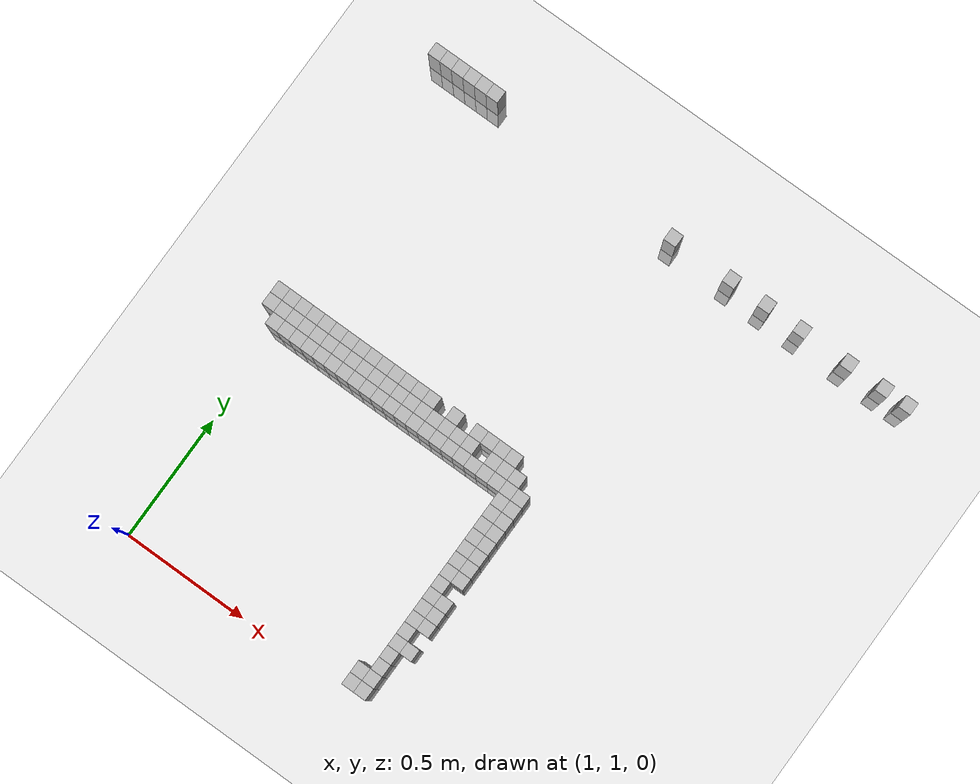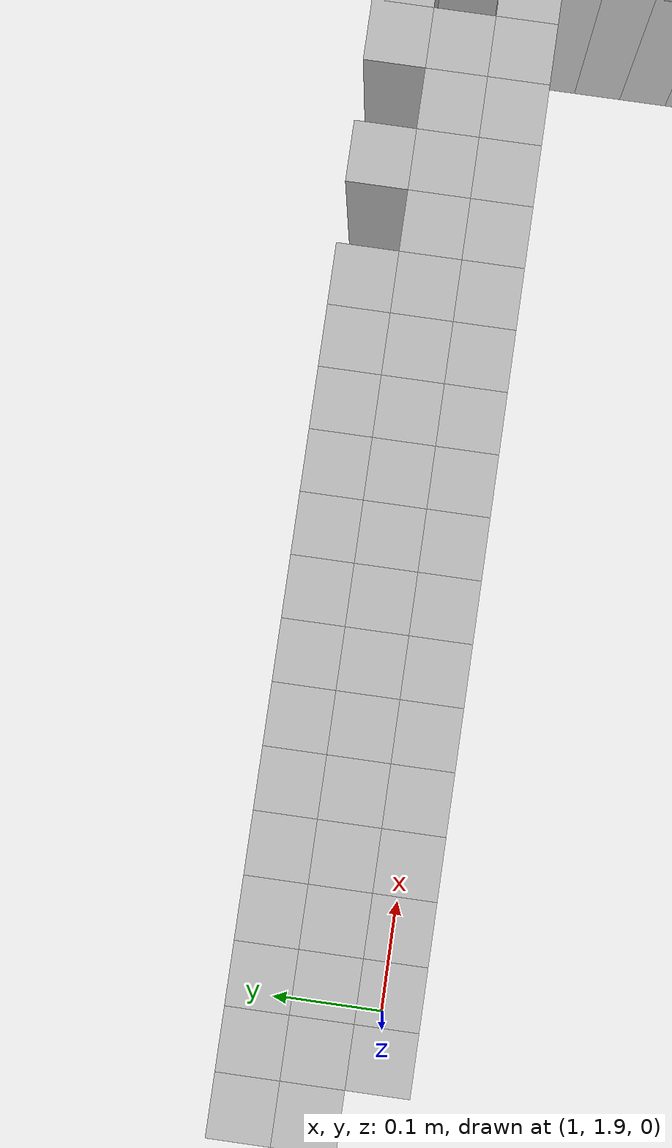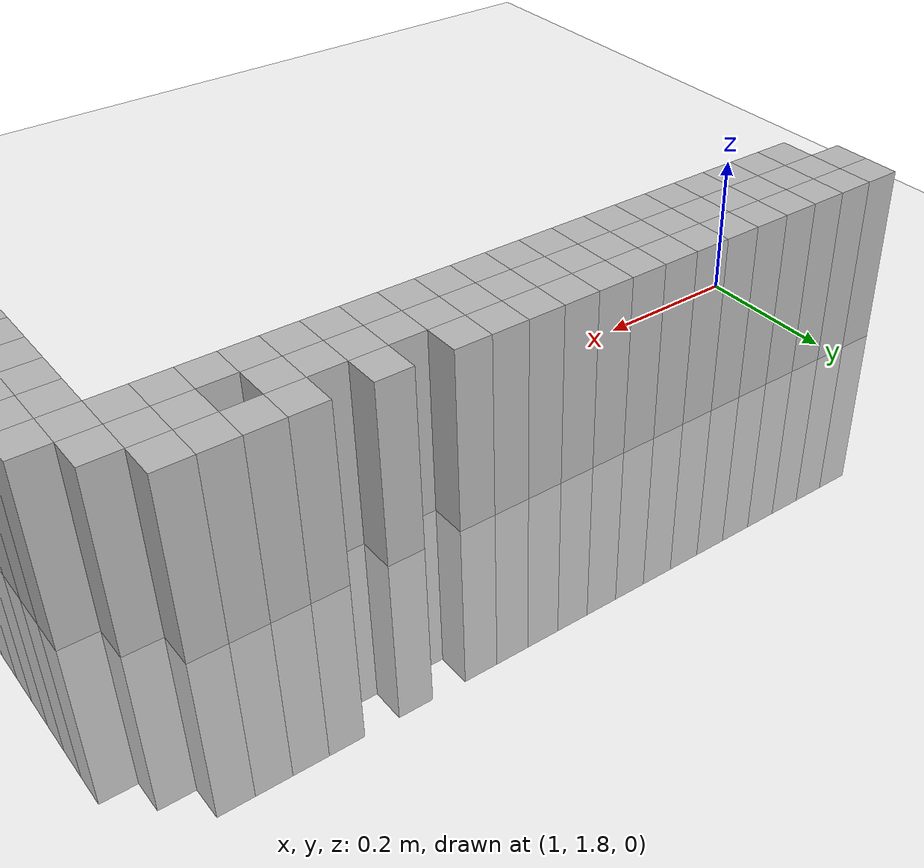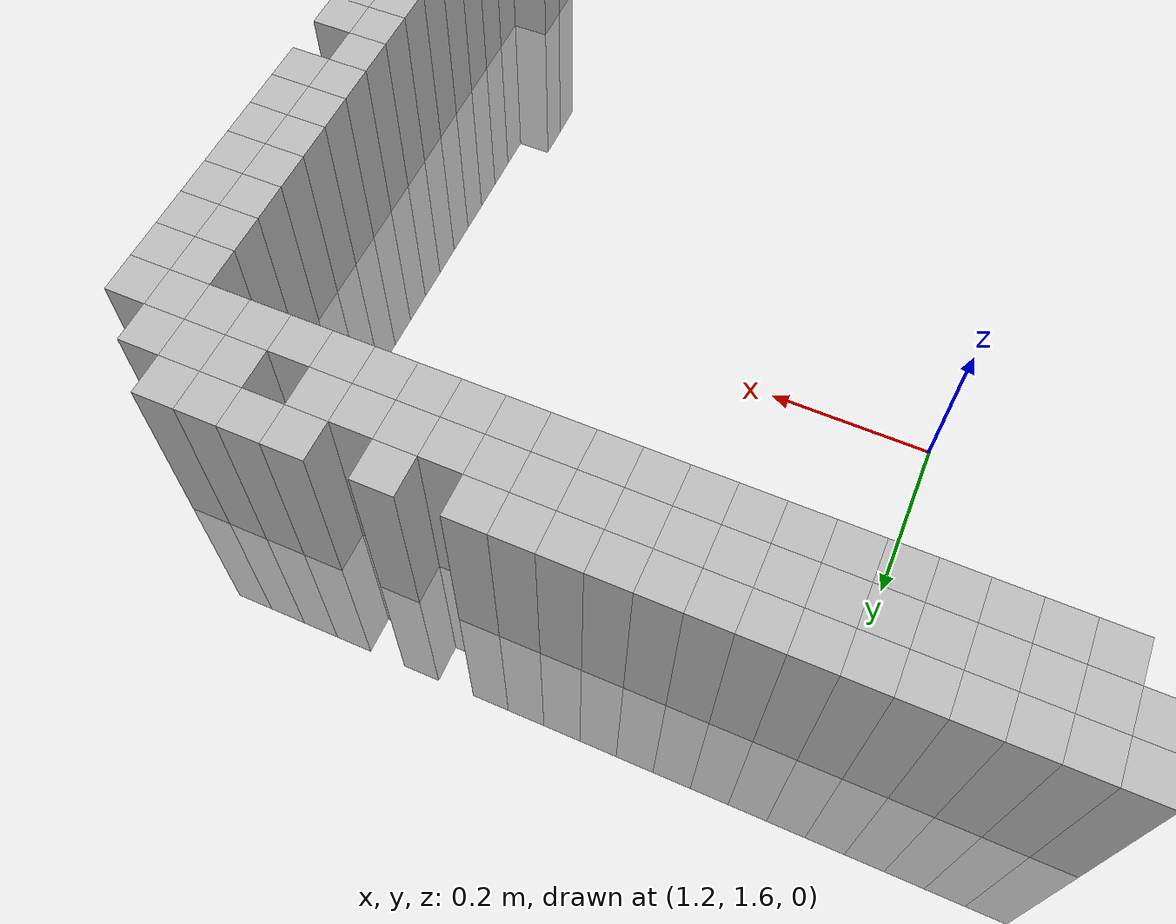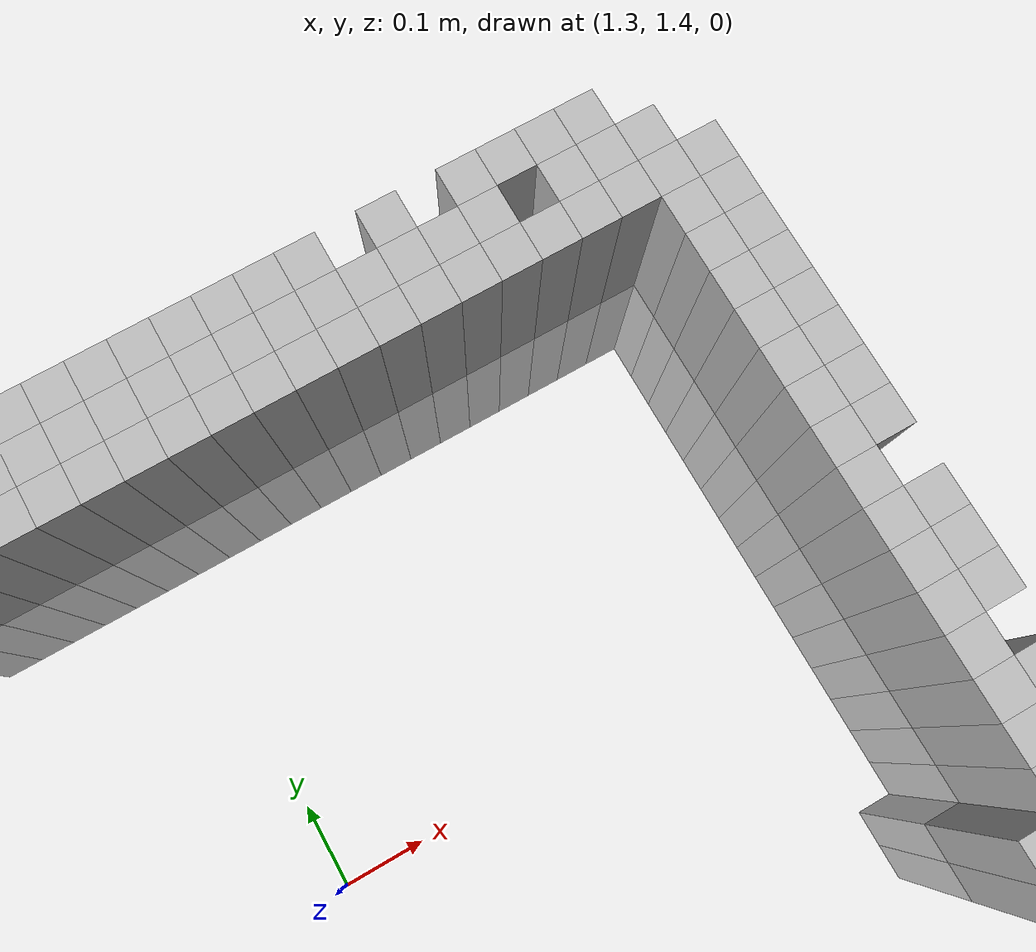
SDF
<sdf version="1.6">
 <world name="my_exploration_world">
  <include><uri>model://ground_plane</uri></include>
  <include><uri>model://sun</uri></include>
  <model name="obstacle_334">
   <pose>1.9500001780688763 1.0500001646578312 0 0 0 0</pose>
   <link name="link">
    <collision name="collision">
     <geometry><box><size>0.05000000074505806 0.05000000074505806 0.5</size></box></geometry>
    </collision>
    <visual name="visual">
     <geometry><box><size>0.05000000074505806 0.05000000074505806 0.5</size></box></geometry>
    </visual>
   </link>
   <static>true</static>
  </model>
  <model name="obstacle_335">
   <pose>2.0000001788139343 1.0500001646578312 0 0 0 0</pose>
   <link name="link">
    <collision name="collision">
     <geometry><box><size>0.05000000074505806 0.05000000074505806 0.5</size></box></geometry>
    </collision>
    <visual name="visual">
     <geometry><box><size>0.05000000074505806 0.05000000074505806 0.5</size></box></geometry>
    </visual>
   </link>
   <static>true</static>
  </model>
  <model name="obstacle_336">
   <pose>1.9500001780688763 1.1000001654028893 0 0 0 0</pose>
   <link name="link">
    <collision name="collision">
     <geometry><box><size>0.05000000074505806 0.05000000074505806 0.5</size></box></geometry>
    </collision>
    <visual name="visual">
     <geometry><box><size>0.05000000074505806 0.05000000074505806 0.5</size></box></geometry>
    </visual>
   </link>
   <static>true</static>
  </model>
  <model name="obstacle_337">
   <pose>2.0000001788139343 1.1000001654028893 0 0 0 0</pose>
   <link name="link">
    <collision name="collision">
     <geometry><box><size>0.05000000074505806 0.05000000074505806 0.5</size></box></geometry>
    </collision>
    <visual name="visual">
     <geometry><box><size>0.05000000074505806 0.05000000074505806 0.5</size></box></geometry>
    </visual>
   </link>
   <static>true</static>
  </model>
  <model name="obstacle_338">
   <pose>2.0000001788139343 1.1500001661479473 0 0 0 0</pose>
   <link name="link">
    <collision name="collision">
     <geometry><box><size>0.05000000074505806 0.05000000074505806 0.5</size></box></geometry>
    </collision>
    <visual name="visual">
     <geometry><box><size>0.05000000074505806 0.05000000074505806 0.5</size></box></geometry>
    </visual>
   </link>
   <static>true</static>
  </model>
  <model name="obstacle_339">
   <pose>2.0000001788139343 1.2000001668930054 0 0 0 0</pose>
   <link name="link">
    <collision name="collision">
     <geometry><box><size>0.05000000074505806 0.05000000074505806 0.5</size></box></geometry>
    </collision>
    <visual name="visual">
     <geometry><box><size>0.05000000074505806 0.05000000074505806 0.5</size></box></geometry>
    </visual>
   </link>
   <static>true</static>
  </model>
  <model name="obstacle_340">
   <pose>2.0000001788139343 1.2500001676380634 0 0 0 0</pose>
   <link name="link">
    <collision name="collision">
     <geometry><box><size>0.05000000074505806 0.05000000074505806 0.5</size></box></geometry>
    </collision>
    <visual name="visual">
     <geometry><box><size>0.05000000074505806 0.05000000074505806 0.5</size></box></geometry>
    </visual>
   </link>
   <static>true</static>
  </model>
  <model name="obstacle_341">
   <pose>2.0500001795589924 1.2500001676380634 0 0 0 0</pose>
   <link name="link">
    <collision name="collision">
     <geometry><box><size>0.05000000074505806 0.05000000074505806 0.5</size></box></geometry>
    </collision>
    <visual name="visual">
     <geometry><box><size>0.05000000074505806 0.05000000074505806 0.5</size></box></geometry>
    </visual>
   </link>
   <static>true</static>
  </model>
  <model name="obstacle_342">
   <pose>2.0000001788139343 1.3000001683831215 0 0 0 0</pose>
   <link name="link">
    <collision name="collision">
     <geometry><box><size>0.05000000074505806 0.05000000074505806 0.5</size></box></geometry>
    </collision>
    <visual name="visual">
     <geometry><box><size>0.05000000074505806 0.05000000074505806 0.5</size></box></geometry>
    </visual>
   </link>
   <static>true</static>
  </model>
  <model name="obstacle_343">
   <pose>2.0000001788139343 1.3500001691281796 0 0 0 0</pose>
   <link name="link">
    <collision name="collision">
     <geometry><box><size>0.05000000074505806 0.05000000074505806 0.5</size></box></geometry>
    </collision>
    <visual name="visual">
     <geometry><box><size>0.05000000074505806 0.05000000074505806 0.5</size></box></geometry>
    </visual>
   </link>
   <static>true</static>
  </model>
  <model name="obstacle_344">
   <pose>2.0500001795589924 1.3500001691281796 0 0 0 0</pose>
   <link name="link">
    <collision name="collision">
     <geometry><box><size>0.05000000074505806 0.05000000074505806 0.5</size></box></geometry>
    </collision>
    <visual name="visual">
     <geometry><box><size>0.05000000074505806 0.05000000074505806 0.5</size></box></geometry>
    </visual>
   </link>
   <static>true</static>
  </model>
  <model name="obstacle_345">
   <pose>2.0000001788139343 1.4000001698732376 0 0 0 0</pose>
   <link name="link">
    <collision name="collision">
     <geometry><box><size>0.05000000074505806 0.05000000074505806 0.5</size></box></geometry>
    </collision>
    <visual name="visual">
     <geometry><box><size>0.05000000074505806 0.05000000074505806 0.5</size></box></geometry>
    </visual>
   </link>
   <static>true</static>
  </model>
  <model name="obstacle_346">
   <pose>2.0500001795589924 1.4000001698732376 0 0 0 0</pose>
   <link name="link">
    <collision name="collision">
     <geometry><box><size>0.05000000074505806 0.05000000074505806 0.5</size></box></geometry>
    </collision>
    <visual name="visual">
     <geometry><box><size>0.05000000074505806 0.05000000074505806 0.5</size></box></geometry>
    </visual>
   </link>
   <static>true</static>
  </model>
  <model name="obstacle_347">
   <pose>2.0000001788139343 1.4500001706182957 0 0 0 0</pose>
   <link name="link">
    <collision name="collision">
     <geometry><box><size>0.05000000074505806 0.05000000074505806 0.5</size></box></geometry>
    </collision>
    <visual name="visual">
     <geometry><box><size>0.05000000074505806 0.05000000074505806 0.5</size></box></geometry>
    </visual>
   </link>
   <static>true</static>
  </model>
  <model name="obstacle_348">
   <pose>2.0500001795589924 1.4500001706182957 0 0 0 0</pose>
   <link name="link">
    <collision name="collision">
     <geometry><box><size>0.05000000074505806 0.05000000074505806 0.5</size></box></geometry>
    </collision>
    <visual name="visual">
     <geometry><box><size>0.05000000074505806 0.05000000074505806 0.5</size></box></geometry>
    </visual>
   </link>
   <static>true</static>
  </model>
  <model name="obstacle_349">
   <pose>2.0000001788139343 1.5000001713633537 0 0 0 0</pose>
   <link name="link">
    <collision name="collision">
     <geometry><box><size>0.05000000074505806 0.05000000074505806 0.5</size></box></geometry>
    </collision>
    <visual name="visual">
     <geometry><box><size>0.05000000074505806 0.05000000074505806 0.5</size></box></geometry>
    </visual>
   </link>
   <static>true</static>
  </model>
  <model name="obstacle_350">
   <pose>2.0000001788139343 1.5500001721084118 0 0 0 0</pose>
   <link name="link">
    <collision name="collision">
     <geometry><box><size>0.05000000074505806 0.05000000074505806 0.5</size></box></geometry>
    </collision>
    <visual name="visual">
     <geometry><box><size>0.05000000074505806 0.05000000074505806 0.5</size></box></geometry>
    </visual>
   </link>
   <static>true</static>
  </model>
  <model name="obstacle_351">
   <pose>2.0500001795589924 1.5500001721084118 0 0 0 0</pose>
   <link name="link">
    <collision name="collision">
     <geometry><box><size>0.05000000074505806 0.05000000074505806 0.5</size></box></geometry>
    </collision>
    <visual name="visual">
     <geometry><box><size>0.05000000074505806 0.05000000074505806 0.5</size></box></geometry>
    </visual>
   </link>
   <static>true</static>
  </model>
  <model name="obstacle_352">
   <pose>2.0000001788139343 1.6000001728534698 0 0 0 0</pose>
   <link name="link">
    <collision name="collision">
     <geometry><box><size>0.05000000074505806 0.05000000074505806 0.5</size></box></geometry>
    </collision>
    <visual name="visual">
     <geometry><box><size>0.05000000074505806 0.05000000074505806 0.5</size></box></geometry>
    </visual>
   </link>
   <static>true</static>
  </model>
  <model name="obstacle_353">
   <pose>2.0500001795589924 1.6000001728534698 0 0 0 0</pose>
   <link name="link">
    <collision name="collision">
     <geometry><box><size>0.05000000074505806 0.05000000074505806 0.5</size></box></geometry>
    </collision>
    <visual name="visual">
     <geometry><box><size>0.05000000074505806 0.05000000074505806 0.5</size></box></geometry>
    </visual>
   </link>
   <static>true</static>
  </model>
  <model name="obstacle_354">
   <pose>2.0000001788139343 1.650000173598528 0 0 0 0</pose>
   <link name="link">
    <collision name="collision">
     <geometry><box><size>0.05000000074505806 0.05000000074505806 0.5</size></box></geometry>
    </collision>
    <visual name="visual">
     <geometry><box><size>0.05000000074505806 0.05000000074505806 0.5</size></box></geometry>
    </visual>
   </link>
   <static>true</static>
  </model>
  <model name="obstacle_355">
   <pose>2.0500001795589924 1.650000173598528 0 0 0 0</pose>
   <link name="link">
    <collision name="collision">
     <geometry><box><size>0.05000000074505806 0.05000000074505806 0.5</size></box></geometry>
    </collision>
    <visual name="visual">
     <geometry><box><size>0.05000000074505806 0.05000000074505806 0.5</size></box></geometry>
    </visual>
   </link>
   <static>true</static>
  </model>
  <model name="obstacle_356">
   <pose>2.0000001788139343 1.700000174343586 0 0 0 0</pose>
   <link name="link">
    <collision name="collision">
     <geometry><box><size>0.05000000074505806 0.05000000074505806 0.5</size></box></geometry>
    </collision>
    <visual name="visual">
     <geometry><box><size>0.05000000074505806 0.05000000074505806 0.5</size></box></geometry>
    </visual>
   </link>
   <static>true</static>
  </model>
  <model name="obstacle_357">
   <pose>2.0500001795589924 1.700000174343586 0 0 0 0</pose>
   <link name="link">
    <collision name="collision">
     <geometry><box><size>0.05000000074505806 0.05000000074505806 0.5</size></box></geometry>
    </collision>
    <visual name="visual">
     <geometry><box><size>0.05000000074505806 0.05000000074505806 0.5</size></box></geometry>
    </visual>
   </link>
   <static>true</static>
  </model>
  <model name="obstacle_358">
   <pose>2.0000001788139343 1.750000175088644 0 0 0 0</pose>
   <link name="link">
    <collision name="collision">
     <geometry><box><size>0.05000000074505806 0.05000000074505806 0.5</size></box></geometry>
    </collision>
    <visual name="visual">
     <geometry><box><size>0.05000000074505806 0.05000000074505806 0.5</size></box></geometry>
    </visual>
   </link>
   <static>true</static>
  </model>
  <model name="obstacle_359">
   <pose>2.0500001795589924 1.750000175088644 0 0 0 0</pose>
   <link name="link">
    <collision name="collision">
     <geometry><box><size>0.05000000074505806 0.05000000074505806 0.5</size></box></geometry>
    </collision>
    <visual name="visual">
     <geometry><box><size>0.05000000074505806 0.05000000074505806 0.5</size></box></geometry>
    </visual>
   </link>
   <static>true</static>
  </model>
  <model name="obstacle_360">
   <pose>2.0000001788139343 1.800000175833702 0 0 0 0</pose>
   <link name="link">
    <collision name="collision">
     <geometry><box><size>0.05000000074505806 0.05000000074505806 0.5</size></box></geometry>
    </collision>
    <visual name="visual">
     <geometry><box><size>0.05000000074505806 0.05000000074505806 0.5</size></box></geometry>
    </visual>
   </link>
   <static>true</static>
  </model>
  <model name="obstacle_361">
   <pose>2.0500001795589924 1.800000175833702 0 0 0 0</pose>
   <link name="link">
    <collision name="collision">
     <geometry><box><size>0.05000000074505806 0.05000000074505806 0.5</size></box></geometry>
    </collision>
    <visual name="visual">
     <geometry><box><size>0.05000000074505806 0.05000000074505806 0.5</size></box></geometry>
    </visual>
   </link>
   <static>true</static>
  </model>
  <model name="obstacle_362">
   <pose>2.0000001788139343 1.8500001765787601 0 0 0 0</pose>
   <link name="link">
    <collision name="collision">
     <geometry><box><size>0.05000000074505806 0.05000000074505806 0.5</size></box></geometry>
    </collision>
    <visual name="visual">
     <geometry><box><size>0.05000000074505806 0.05000000074505806 0.5</size></box></geometry>
    </visual>
   </link>
   <static>true</static>
  </model>
  <model name="obstacle_363">
   <pose>2.0500001795589924 1.8500001765787601 0 0 0 0</pose>
   <link name="link">
    <collision name="collision">
     <geometry><box><size>0.05000000074505806 0.05000000074505806 0.5</size></box></geometry>
    </collision>
    <visual name="visual">
     <geometry><box><size>0.05000000074505806 0.05000000074505806 0.5</size></box></geometry>
    </visual>
   </link>
   <static>true</static>
  </model>
  <model name="obstacle_364">
   <pose>1.0000001639127731 1.9000001773238182 0 0 0 0</pose>
   <link name="link">
    <collision name="collision">
     <geometry><box><size>0.05000000074505806 0.05000000074505806 0.5</size></box></geometry>
    </collision>
    <visual name="visual">
     <geometry><box><size>0.05000000074505806 0.05000000074505806 0.5</size></box></geometry>
    </visual>
   </link>
   <static>true</static>
  </model>
  <model name="obstacle_365">
   <pose>1.0500001646578312 1.9000001773238182 0 0 0 0</pose>
   <link name="link">
    <collision name="collision">
     <geometry><box><size>0.05000000074505806 0.05000000074505806 0.5</size></box></geometry>
    </collision>
    <visual name="visual">
     <geometry><box><size>0.05000000074505806 0.05000000074505806 0.5</size></box></geometry>
    </visual>
   </link>
   <static>true</static>
  </model>
  <model name="obstacle_366">
   <pose>1.1000001654028893 1.9000001773238182 0 0 0 0</pose>
   <link name="link">
    <collision name="collision">
     <geometry><box><size>0.05000000074505806 0.05000000074505806 0.5</size></box></geometry>
    </collision>
    <visual name="visual">
     <geometry><box><size>0.05000000074505806 0.05000000074505806 0.5</size></box></geometry>
    </visual>
   </link>
   <static>true</static>
  </model>
  <model name="obstacle_367">
   <pose>1.1500001661479473 1.9000001773238182 0 0 0 0</pose>
   <link name="link">
    <collision name="collision">
     <geometry><box><size>0.05000000074505806 0.05000000074505806 0.5</size></box></geometry>
    </collision>
    <visual name="visual">
     <geometry><box><size>0.05000000074505806 0.05000000074505806 0.5</size></box></geometry>
    </visual>
   </link>
   <static>true</static>
  </model>
  <model name="obstacle_368">
   <pose>1.2000001668930054 1.9000001773238182 0 0 0 0</pose>
   <link name="link">
    <collision name="collision">
     <geometry><box><size>0.05000000074505806 0.05000000074505806 0.5</size></box></geometry>
    </collision>
    <visual name="visual">
     <geometry><box><size>0.05000000074505806 0.05000000074505806 0.5</size></box></geometry>
    </visual>
   </link>
   <static>true</static>
  </model>
  <model name="obstacle_369">
   <pose>1.2500001676380634 1.9000001773238182 0 0 0 0</pose>
   <link name="link">
    <collision name="collision">
     <geometry><box><size>0.05000000074505806 0.05000000074505806 0.5</size></box></geometry>
    </collision>
    <visual name="visual">
     <geometry><box><size>0.05000000074505806 0.05000000074505806 0.5</size></box></geometry>
    </visual>
   </link>
   <static>true</static>
  </model>
  <model name="obstacle_370">
   <pose>1.3000001683831215 1.9000001773238182 0 0 0 0</pose>
   <link name="link">
    <collision name="collision">
     <geometry><box><size>0.05000000074505806 0.05000000074505806 0.5</size></box></geometry>
    </collision>
    <visual name="visual">
     <geometry><box><size>0.05000000074505806 0.05000000074505806 0.5</size></box></geometry>
    </visual>
   </link>
   <static>true</static>
  </model>
  <model name="obstacle_371">
   <pose>1.3500001691281796 1.9000001773238182 0 0 0 0</pose>
   <link name="link">
    <collision name="collision">
     <geometry><box><size>0.05000000074505806 0.05000000074505806 0.5</size></box></geometry>
    </collision>
    <visual name="visual">
     <geometry><box><size>0.05000000074505806 0.05000000074505806 0.5</size></box></geometry>
    </visual>
   </link>
   <static>true</static>
  </model>
  <model name="obstacle_372">
   <pose>1.4000001698732376 1.9000001773238182 0 0 0 0</pose>
   <link name="link">
    <collision name="collision">
     <geometry><box><size>0.05000000074505806 0.05000000074505806 0.5</size></box></geometry>
    </collision>
    <visual name="visual">
     <geometry><box><size>0.05000000074505806 0.05000000074505806 0.5</size></box></geometry>
    </visual>
   </link>
   <static>true</static>
  </model>
  <model name="obstacle_373">
   <pose>1.4500001706182957 1.9000001773238182 0 0 0 0</pose>
   <link name="link">
    <collision name="collision">
     <geometry><box><size>0.05000000074505806 0.05000000074505806 0.5</size></box></geometry>
    </collision>
    <visual name="visual">
     <geometry><box><size>0.05000000074505806 0.05000000074505806 0.5</size></box></geometry>
    </visual>
   </link>
   <static>true</static>
  </model>
  <model name="obstacle_374">
   <pose>1.5000001713633537 1.9000001773238182 0 0 0 0</pose>
   <link name="link">
    <collision name="collision">
     <geometry><box><size>0.05000000074505806 0.05000000074505806 0.5</size></box></geometry>
    </collision>
    <visual name="visual">
     <geometry><box><size>0.05000000074505806 0.05000000074505806 0.5</size></box></geometry>
    </visual>
   </link>
   <static>true</static>
  </model>
  <model name="obstacle_375">
   <pose>1.5500001721084118 1.9000001773238182 0 0 0 0</pose>
   <link name="link">
    <collision name="collision">
     <geometry><box><size>0.05000000074505806 0.05000000074505806 0.5</size></box></geometry>
    </collision>
    <visual name="visual">
     <geometry><box><size>0.05000000074505806 0.05000000074505806 0.5</size></box></geometry>
    </visual>
   </link>
   <static>true</static>
  </model>
  <model name="obstacle_376">
   <pose>1.6000001728534698 1.9000001773238182 0 0 0 0</pose>
   <link name="link">
    <collision name="collision">
     <geometry><box><size>0.05000000074505806 0.05000000074505806 0.5</size></box></geometry>
    </collision>
    <visual name="visual">
     <geometry><box><size>0.05000000074505806 0.05000000074505806 0.5</size></box></geometry>
    </visual>
   </link>
   <static>true</static>
  </model>
  <model name="obstacle_377">
   <pose>1.650000173598528 1.9000001773238182 0 0 0 0</pose>
   <link name="link">
    <collision name="collision">
     <geometry><box><size>0.05000000074505806 0.05000000074505806 0.5</size></box></geometry>
    </collision>
    <visual name="visual">
     <geometry><box><size>0.05000000074505806 0.05000000074505806 0.5</size></box></geometry>
    </visual>
   </link>
   <static>true</static>
  </model>
  <model name="obstacle_378">
   <pose>1.700000174343586 1.9000001773238182 0 0 0 0</pose>
   <link name="link">
    <collision name="collision">
     <geometry><box><size>0.05000000074505806 0.05000000074505806 0.5</size></box></geometry>
    </collision>
    <visual name="visual">
     <geometry><box><size>0.05000000074505806 0.05000000074505806 0.5</size></box></geometry>
    </visual>
   </link>
   <static>true</static>
  </model>
  <model name="obstacle_379">
   <pose>1.750000175088644 1.9000001773238182 0 0 0 0</pose>
   <link name="link">
    <collision name="collision">
     <geometry><box><size>0.05000000074505806 0.05000000074505806 0.5</size></box></geometry>
    </collision>
    <visual name="visual">
     <geometry><box><size>0.05000000074505806 0.05000000074505806 0.5</size></box></geometry>
    </visual>
   </link>
   <static>true</static>
  </model>
  <model name="obstacle_380">
   <pose>1.800000175833702 1.9000001773238182 0 0 0 0</pose>
   <link name="link">
    <collision name="collision">
     <geometry><box><size>0.05000000074505806 0.05000000074505806 0.5</size></box></geometry>
    </collision>
    <visual name="visual">
     <geometry><box><size>0.05000000074505806 0.05000000074505806 0.5</size></box></geometry>
    </visual>
   </link>
   <static>true</static>
  </model>
  <model name="obstacle_381">
   <pose>1.8500001765787601 1.9000001773238182 0 0 0 0</pose>
   <link name="link">
    <collision name="collision">
     <geometry><box><size>0.05000000074505806 0.05000000074505806 0.5</size></box></geometry>
    </collision>
    <visual name="visual">
     <geometry><box><size>0.05000000074505806 0.05000000074505806 0.5</size></box></geometry>
    </visual>
   </link>
   <static>true</static>
  </model>
  <model name="obstacle_382">
   <pose>1.9000001773238182 1.9000001773238182 0 0 0 0</pose>
   <link name="link">
    <collision name="collision">
     <geometry><box><size>0.05000000074505806 0.05000000074505806 0.5</size></box></geometry>
    </collision>
    <visual name="visual">
     <geometry><box><size>0.05000000074505806 0.05000000074505806 0.5</size></box></geometry>
    </visual>
   </link>
   <static>true</static>
  </model>
  <model name="obstacle_383">
   <pose>1.9500001780688763 1.9000001773238182 0 0 0 0</pose>
   <link name="link">
    <collision name="collision">
     <geometry><box><size>0.05000000074505806 0.05000000074505806 0.5</size></box></geometry>
    </collision>
    <visual name="visual">
     <geometry><box><size>0.05000000074505806 0.05000000074505806 0.5</size></box></geometry>
    </visual>
   </link>
   <static>true</static>
  </model>
  <model name="obstacle_384">
   <pose>2.0000001788139343 1.9000001773238182 0 0 0 0</pose>
   <link name="link">
    <collision name="collision">
     <geometry><box><size>0.05000000074505806 0.05000000074505806 0.5</size></box></geometry>
    </collision>
    <visual name="visual">
     <geometry><box><size>0.05000000074505806 0.05000000074505806 0.5</size></box></geometry>
    </visual>
   </link>
   <static>true</static>
  </model>
  <model name="obstacle_385">
   <pose>2.0500001795589924 1.9000001773238182 0 0 0 0</pose>
   <link name="link">
    <collision name="collision">
     <geometry><box><size>0.05000000074505806 0.05000000074505806 0.5</size></box></geometry>
    </collision>
    <visual name="visual">
     <geometry><box><size>0.05000000074505806 0.05000000074505806 0.5</size></box></geometry>
    </visual>
   </link>
   <static>true</static>
  </model>
  <model name="obstacle_408">
   <pose>0.9500001631677151 1.9500001780688763 0 0 0 0</pose>
   <link name="link">
    <collision name="collision">
     <geometry><box><size>0.05000000074505806 0.05000000074505806 0.5</size></box></geometry>
    </collision>
    <visual name="visual">
     <geometry><box><size>0.05000000074505806 0.05000000074505806 0.5</size></box></geometry>
    </visual>
   </link>
   <static>true</static>
  </model>
  <model name="obstacle_409">
   <pose>1.0000001639127731 1.9500001780688763 0 0 0 0</pose>
   <link name="link">
    <collision name="collision">
     <geometry><box><size>0.05000000074505806 0.05000000074505806 0.5</size></box></geometry>
    </collision>
    <visual name="visual">
     <geometry><box><size>0.05000000074505806 0.05000000074505806 0.5</size></box></geometry>
    </visual>
   </link>
   <static>true</static>
  </model>
  <model name="obstacle_410">
   <pose>1.0500001646578312 1.9500001780688763 0 0 0 0</pose>
   <link name="link">
    <collision name="collision">
     <geometry><box><size>0.05000000074505806 0.05000000074505806 0.5</size></box></geometry>
    </collision>
    <visual name="visual">
     <geometry><box><size>0.05000000074505806 0.05000000074505806 0.5</size></box></geometry>
    </visual>
   </link>
   <static>true</static>
  </model>
  <model name="obstacle_411">
   <pose>1.1000001654028893 1.9500001780688763 0 0 0 0</pose>
   <link name="link">
    <collision name="collision">
     <geometry><box><size>0.05000000074505806 0.05000000074505806 0.5</size></box></geometry>
    </collision>
    <visual name="visual">
     <geometry><box><size>0.05000000074505806 0.05000000074505806 0.5</size></box></geometry>
    </visual>
   </link>
   <static>true</static>
  </model>
  <model name="obstacle_412">
   <pose>1.1500001661479473 1.9500001780688763 0 0 0 0</pose>
   <link name="link">
    <collision name="collision">
     <geometry><box><size>0.05000000074505806 0.05000000074505806 0.5</size></box></geometry>
    </collision>
    <visual name="visual">
     <geometry><box><size>0.05000000074505806 0.05000000074505806 0.5</size></box></geometry>
    </visual>
   </link>
   <static>true</static>
  </model>
  <model name="obstacle_413">
   <pose>1.2000001668930054 1.9500001780688763 0 0 0 0</pose>
   <link name="link">
    <collision name="collision">
     <geometry><box><size>0.05000000074505806 0.05000000074505806 0.5</size></box></geometry>
    </collision>
    <visual name="visual">
     <geometry><box><size>0.05000000074505806 0.05000000074505806 0.5</size></box></geometry>
    </visual>
   </link>
   <static>true</static>
  </model>
  <model name="obstacle_414">
   <pose>1.2500001676380634 1.9500001780688763 0 0 0 0</pose>
   <link name="link">
    <collision name="collision">
     <geometry><box><size>0.05000000074505806 0.05000000074505806 0.5</size></box></geometry>
    </collision>
    <visual name="visual">
     <geometry><box><size>0.05000000074505806 0.05000000074505806 0.5</size></box></geometry>
    </visual>
   </link>
   <static>true</static>
  </model>
  <model name="obstacle_415">
   <pose>1.3000001683831215 1.9500001780688763 0 0 0 0</pose>
   <link name="link">
    <collision name="collision">
     <geometry><box><size>0.05000000074505806 0.05000000074505806 0.5</size></box></geometry>
    </collision>
    <visual name="visual">
     <geometry><box><size>0.05000000074505806 0.05000000074505806 0.5</size></box></geometry>
    </visual>
   </link>
   <static>true</static>
  </model>
  <model name="obstacle_416">
   <pose>1.3500001691281796 1.9500001780688763 0 0 0 0</pose>
   <link name="link">
    <collision name="collision">
     <geometry><box><size>0.05000000074505806 0.05000000074505806 0.5</size></box></geometry>
    </collision>
    <visual name="visual">
     <geometry><box><size>0.05000000074505806 0.05000000074505806 0.5</size></box></geometry>
    </visual>
   </link>
   <static>true</static>
  </model>
  <model name="obstacle_417">
   <pose>1.4000001698732376 1.9500001780688763 0 0 0 0</pose>
   <link name="link">
    <collision name="collision">
     <geometry><box><size>0.05000000074505806 0.05000000074505806 0.5</size></box></geometry>
    </collision>
    <visual name="visual">
     <geometry><box><size>0.05000000074505806 0.05000000074505806 0.5</size></box></geometry>
    </visual>
   </link>
   <static>true</static>
  </model>
  <model name="obstacle_418">
   <pose>1.4500001706182957 1.9500001780688763 0 0 0 0</pose>
   <link name="link">
    <collision name="collision">
     <geometry><box><size>0.05000000074505806 0.05000000074505806 0.5</size></box></geometry>
    </collision>
    <visual name="visual">
     <geometry><box><size>0.05000000074505806 0.05000000074505806 0.5</size></box></geometry>
    </visual>
   </link>
   <static>true</static>
  </model>
  <model name="obstacle_419">
   <pose>1.5000001713633537 1.9500001780688763 0 0 0 0</pose>
   <link name="link">
    <collision name="collision">
     <geometry><box><size>0.05000000074505806 0.05000000074505806 0.5</size></box></geometry>
    </collision>
    <visual name="visual">
     <geometry><box><size>0.05000000074505806 0.05000000074505806 0.5</size></box></geometry>
    </visual>
   </link>
   <static>true</static>
  </model>
  <model name="obstacle_420">
   <pose>1.5500001721084118 1.9500001780688763 0 0 0 0</pose>
   <link name="link">
    <collision name="collision">
     <geometry><box><size>0.05000000074505806 0.05000000074505806 0.5</size></box></geometry>
    </collision>
    <visual name="visual">
     <geometry><box><size>0.05000000074505806 0.05000000074505806 0.5</size></box></geometry>
    </visual>
   </link>
   <static>true</static>
  </model>
  <model name="obstacle_421">
   <pose>1.6000001728534698 1.9500001780688763 0 0 0 0</pose>
   <link name="link">
    <collision name="collision">
     <geometry><box><size>0.05000000074505806 0.05000000074505806 0.5</size></box></geometry>
    </collision>
    <visual name="visual">
     <geometry><box><size>0.05000000074505806 0.05000000074505806 0.5</size></box></geometry>
    </visual>
   </link>
   <static>true</static>
  </model>
  <model name="obstacle_422">
   <pose>1.650000173598528 1.9500001780688763 0 0 0 0</pose>
   <link name="link">
    <collision name="collision">
     <geometry><box><size>0.05000000074505806 0.05000000074505806 0.5</size></box></geometry>
    </collision>
    <visual name="visual">
     <geometry><box><size>0.05000000074505806 0.05000000074505806 0.5</size></box></geometry>
    </visual>
   </link>
   <static>true</static>
  </model>
  <model name="obstacle_423">
   <pose>1.700000174343586 1.9500001780688763 0 0 0 0</pose>
   <link name="link">
    <collision name="collision">
     <geometry><box><size>0.05000000074505806 0.05000000074505806 0.5</size></box></geometry>
    </collision>
    <visual name="visual">
     <geometry><box><size>0.05000000074505806 0.05000000074505806 0.5</size></box></geometry>
    </visual>
   </link>
   <static>true</static>
  </model>
  <model name="obstacle_424">
   <pose>1.750000175088644 1.9500001780688763 0 0 0 0</pose>
   <link name="link">
    <collision name="collision">
     <geometry><box><size>0.05000000074505806 0.05000000074505806 0.5</size></box></geometry>
    </collision>
    <visual name="visual">
     <geometry><box><size>0.05000000074505806 0.05000000074505806 0.5</size></box></geometry>
    </visual>
   </link>
   <static>true</static>
  </model>
  <model name="obstacle_425">
   <pose>1.800000175833702 1.9500001780688763 0 0 0 0</pose>
   <link name="link">
    <collision name="collision">
     <geometry><box><size>0.05000000074505806 0.05000000074505806 0.5</size></box></geometry>
    </collision>
    <visual name="visual">
     <geometry><box><size>0.05000000074505806 0.05000000074505806 0.5</size></box></geometry>
    </visual>
   </link>
   <static>true</static>
  </model>
  <model name="obstacle_426">
   <pose>1.9000001773238182 1.9500001780688763 0 0 0 0</pose>
   <link name="link">
    <collision name="collision">
     <geometry><box><size>0.05000000074505806 0.05000000074505806 0.5</size></box></geometry>
    </collision>
    <visual name="visual">
     <geometry><box><size>0.05000000074505806 0.05000000074505806 0.5</size></box></geometry>
    </visual>
   </link>
   <static>true</static>
  </model>
  <model name="obstacle_427">
   <pose>1.9500001780688763 1.9500001780688763 0 0 0 0</pose>
   <link name="link">
    <collision name="collision">
     <geometry><box><size>0.05000000074505806 0.05000000074505806 0.5</size></box></geometry>
    </collision>
    <visual name="visual">
     <geometry><box><size>0.05000000074505806 0.05000000074505806 0.5</size></box></geometry>
    </visual>
   </link>
   <static>true</static>
  </model>
  <model name="obstacle_428">
   <pose>2.0000001788139343 1.9500001780688763 0 0 0 0</pose>
   <link name="link">
    <collision name="collision">
     <geometry><box><size>0.05000000074505806 0.05000000074505806 0.5</size></box></geometry>
    </collision>
    <visual name="visual">
     <geometry><box><size>0.05000000074505806 0.05000000074505806 0.5</size></box></geometry>
    </visual>
   </link>
   <static>true</static>
  </model>
  <model name="obstacle_452">
   <pose>0.9500001631677151 2.0000001788139343 0 0 0 0</pose>
   <link name="link">
    <collision name="collision">
     <geometry><box><size>0.05000000074505806 0.05000000074505806 0.5</size></box></geometry>
    </collision>
    <visual name="visual">
     <geometry><box><size>0.05000000074505806 0.05000000074505806 0.5</size></box></geometry>
    </visual>
   </link>
   <static>true</static>
  </model>
  <model name="obstacle_453">
   <pose>1.0000001639127731 2.0000001788139343 0 0 0 0</pose>
   <link name="link">
    <collision name="collision">
     <geometry><box><size>0.05000000074505806 0.05000000074505806 0.5</size></box></geometry>
    </collision>
    <visual name="visual">
     <geometry><box><size>0.05000000074505806 0.05000000074505806 0.5</size></box></geometry>
    </visual>
   </link>
   <static>true</static>
  </model>
  <model name="obstacle_454">
   <pose>1.0500001646578312 2.0000001788139343 0 0 0 0</pose>
   <link name="link">
    <collision name="collision">
     <geometry><box><size>0.05000000074505806 0.05000000074505806 0.5</size></box></geometry>
    </collision>
    <visual name="visual">
     <geometry><box><size>0.05000000074505806 0.05000000074505806 0.5</size></box></geometry>
    </visual>
   </link>
   <static>true</static>
  </model>
  <model name="obstacle_455">
   <pose>1.1000001654028893 2.0000001788139343 0 0 0 0</pose>
   <link name="link">
    <collision name="collision">
     <geometry><box><size>0.05000000074505806 0.05000000074505806 0.5</size></box></geometry>
    </collision>
    <visual name="visual">
     <geometry><box><size>0.05000000074505806 0.05000000074505806 0.5</size></box></geometry>
    </visual>
   </link>
   <static>true</static>
  </model>
  <model name="obstacle_456">
   <pose>1.1500001661479473 2.0000001788139343 0 0 0 0</pose>
   <link name="link">
    <collision name="collision">
     <geometry><box><size>0.05000000074505806 0.05000000074505806 0.5</size></box></geometry>
    </collision>
    <visual name="visual">
     <geometry><box><size>0.05000000074505806 0.05000000074505806 0.5</size></box></geometry>
    </visual>
   </link>
   <static>true</static>
  </model>
  <model name="obstacle_457">
   <pose>1.2000001668930054 2.0000001788139343 0 0 0 0</pose>
   <link name="link">
    <collision name="collision">
     <geometry><box><size>0.05000000074505806 0.05000000074505806 0.5</size></box></geometry>
    </collision>
    <visual name="visual">
     <geometry><box><size>0.05000000074505806 0.05000000074505806 0.5</size></box></geometry>
    </visual>
   </link>
   <static>true</static>
  </model>
  <model name="obstacle_458">
   <pose>1.2500001676380634 2.0000001788139343 0 0 0 0</pose>
   <link name="link">
    <collision name="collision">
     <geometry><box><size>0.05000000074505806 0.05000000074505806 0.5</size></box></geometry>
    </collision>
    <visual name="visual">
     <geometry><box><size>0.05000000074505806 0.05000000074505806 0.5</size></box></geometry>
    </visual>
   </link>
   <static>true</static>
  </model>
  <model name="obstacle_459">
   <pose>1.3000001683831215 2.0000001788139343 0 0 0 0</pose>
   <link name="link">
    <collision name="collision">
     <geometry><box><size>0.05000000074505806 0.05000000074505806 0.5</size></box></geometry>
    </collision>
    <visual name="visual">
     <geometry><box><size>0.05000000074505806 0.05000000074505806 0.5</size></box></geometry>
    </visual>
   </link>
   <static>true</static>
  </model>
  <model name="obstacle_460">
   <pose>1.3500001691281796 2.0000001788139343 0 0 0 0</pose>
   <link name="link">
    <collision name="collision">
     <geometry><box><size>0.05000000074505806 0.05000000074505806 0.5</size></box></geometry>
    </collision>
    <visual name="visual">
     <geometry><box><size>0.05000000074505806 0.05000000074505806 0.5</size></box></geometry>
    </visual>
   </link>
   <static>true</static>
  </model>
  <model name="obstacle_461">
   <pose>1.4000001698732376 2.0000001788139343 0 0 0 0</pose>
   <link name="link">
    <collision name="collision">
     <geometry><box><size>0.05000000074505806 0.05000000074505806 0.5</size></box></geometry>
    </collision>
    <visual name="visual">
     <geometry><box><size>0.05000000074505806 0.05000000074505806 0.5</size></box></geometry>
    </visual>
   </link>
   <static>true</static>
  </model>
  <model name="obstacle_462">
   <pose>1.4500001706182957 2.0000001788139343 0 0 0 0</pose>
   <link name="link">
    <collision name="collision">
     <geometry><box><size>0.05000000074505806 0.05000000074505806 0.5</size></box></geometry>
    </collision>
    <visual name="visual">
     <geometry><box><size>0.05000000074505806 0.05000000074505806 0.5</size></box></geometry>
    </visual>
   </link>
   <static>true</static>
  </model>
  <model name="obstacle_463">
   <pose>1.5000001713633537 2.0000001788139343 0 0 0 0</pose>
   <link name="link">
    <collision name="collision">
     <geometry><box><size>0.05000000074505806 0.05000000074505806 0.5</size></box></geometry>
    </collision>
    <visual name="visual">
     <geometry><box><size>0.05000000074505806 0.05000000074505806 0.5</size></box></geometry>
    </visual>
   </link>
   <static>true</static>
  </model>
  <model name="obstacle_464">
   <pose>1.5500001721084118 2.0000001788139343 0 0 0 0</pose>
   <link name="link">
    <collision name="collision">
     <geometry><box><size>0.05000000074505806 0.05000000074505806 0.5</size></box></geometry>
    </collision>
    <visual name="visual">
     <geometry><box><size>0.05000000074505806 0.05000000074505806 0.5</size></box></geometry>
    </visual>
   </link>
   <static>true</static>
  </model>
  <model name="obstacle_465">
   <pose>1.6000001728534698 2.0000001788139343 0 0 0 0</pose>
   <link name="link">
    <collision name="collision">
     <geometry><box><size>0.05000000074505806 0.05000000074505806 0.5</size></box></geometry>
    </collision>
    <visual name="visual">
     <geometry><box><size>0.05000000074505806 0.05000000074505806 0.5</size></box></geometry>
    </visual>
   </link>
   <static>true</static>
  </model>
  <model name="obstacle_466">
   <pose>1.700000174343586 2.0000001788139343 0 0 0 0</pose>
   <link name="link">
    <collision name="collision">
     <geometry><box><size>0.05000000074505806 0.05000000074505806 0.5</size></box></geometry>
    </collision>
    <visual name="visual">
     <geometry><box><size>0.05000000074505806 0.05000000074505806 0.5</size></box></geometry>
    </visual>
   </link>
   <static>true</static>
  </model>
  <model name="obstacle_467">
   <pose>1.800000175833702 2.0000001788139343 0 0 0 0</pose>
   <link name="link">
    <collision name="collision">
     <geometry><box><size>0.05000000074505806 0.05000000074505806 0.5</size></box></geometry>
    </collision>
    <visual name="visual">
     <geometry><box><size>0.05000000074505806 0.05000000074505806 0.5</size></box></geometry>
    </visual>
   </link>
   <static>true</static>
  </model>
  <model name="obstacle_468">
   <pose>1.8500001765787601 2.0000001788139343 0 0 0 0</pose>
   <link name="link">
    <collision name="collision">
     <geometry><box><size>0.05000000074505806 0.05000000074505806 0.5</size></box></geometry>
    </collision>
    <visual name="visual">
     <geometry><box><size>0.05000000074505806 0.05000000074505806 0.5</size></box></geometry>
    </visual>
   </link>
   <static>true</static>
  </model>
  <model name="obstacle_469">
   <pose>1.9000001773238182 2.0000001788139343 0 0 0 0</pose>
   <link name="link">
    <collision name="collision">
     <geometry><box><size>0.05000000074505806 0.05000000074505806 0.5</size></box></geometry>
    </collision>
    <visual name="visual">
     <geometry><box><size>0.05000000074505806 0.05000000074505806 0.5</size></box></geometry>
    </visual>
   </link>
   <static>true</static>
  </model>
  <model name="obstacle_470">
   <pose>1.9500001780688763 2.0000001788139343 0 0 0 0</pose>
   <link name="link">
    <collision name="collision">
     <geometry><box><size>0.05000000074505806 0.05000000074505806 0.5</size></box></geometry>
    </collision>
    <visual name="visual">
     <geometry><box><size>0.05000000074505806 0.05000000074505806 0.5</size></box></geometry>
    </visual>
   </link>
   <static>true</static>
  </model>
  <model name="obstacle_489">
   <pose>1.9500001780688763 2.9500001929700375 0 0 0 0</pose>
   <link name="link">
    <collision name="collision">
     <geometry><box><size>0.05000000074505806 0.05000000074505806 0.5</size></box></geometry>
    </collision>
    <visual name="visual">
     <geometry><box><size>0.05000000074505806 0.05000000074505806 0.5</size></box></geometry>
    </visual>
   </link>
   <static>true</static>
  </model>
  <model name="obstacle_490">
   <pose>2.2000001817941666 2.9500001929700375 0 0 0 0</pose>
   <link name="link">
    <collision name="collision">
     <geometry><box><size>0.05000000074505806 0.05000000074505806 0.5</size></box></geometry>
    </collision>
    <visual name="visual">
     <geometry><box><size>0.05000000074505806 0.05000000074505806 0.5</size></box></geometry>
    </visual>
   </link>
   <static>true</static>
  </model>
  <model name="obstacle_491">
   <pose>2.3500001840293407 2.9500001929700375 0 0 0 0</pose>
   <link name="link">
    <collision name="collision">
     <geometry><box><size>0.05000000074505806 0.05000000074505806 0.5</size></box></geometry>
    </collision>
    <visual name="visual">
     <geometry><box><size>0.05000000074505806 0.05000000074505806 0.5</size></box></geometry>
    </visual>
   </link>
   <static>true</static>
  </model>
  <model name="obstacle_492">
   <pose>2.500000186264515 2.9500001929700375 0 0 0 0</pose>
   <link name="link">
    <collision name="collision">
     <geometry><box><size>0.05000000074505806 0.05000000074505806 0.5</size></box></geometry>
    </collision>
    <visual name="visual">
     <geometry><box><size>0.05000000074505806 0.05000000074505806 0.5</size></box></geometry>
    </visual>
   </link>
   <static>true</static>
  </model>
  <model name="obstacle_493">
   <pose>2.700000189244747 2.9500001929700375 0 0 0 0</pose>
   <link name="link">
    <collision name="collision">
     <geometry><box><size>0.05000000074505806 0.05000000074505806 0.5</size></box></geometry>
    </collision>
    <visual name="visual">
     <geometry><box><size>0.05000000074505806 0.05000000074505806 0.5</size></box></geometry>
    </visual>
   </link>
   <static>true</static>
  </model>
  <model name="obstacle_494">
   <pose>2.8500001914799213 2.9500001929700375 0 0 0 0</pose>
   <link name="link">
    <collision name="collision">
     <geometry><box><size>0.05000000074505806 0.05000000074505806 0.5</size></box></geometry>
    </collision>
    <visual name="visual">
     <geometry><box><size>0.05000000074505806 0.05000000074505806 0.5</size></box></geometry>
    </visual>
   </link>
   <static>true</static>
  </model>
  <model name="obstacle_495">
   <pose>2.9500001929700375 2.9500001929700375 0 0 0 0</pose>
   <link name="link">
    <collision name="collision">
     <geometry><box><size>0.05000000074505806 0.05000000074505806 0.5</size></box></geometry>
    </collision>
    <visual name="visual">
     <geometry><box><size>0.05000000074505806 0.05000000074505806 0.5</size></box></geometry>
    </visual>
   </link>
   <static>true</static>
  </model>
  <model name="obstacle_515">
   <pose>0.900000162422657 3.0000001937150955 0 0 0 0</pose>
   <link name="link">
    <collision name="collision">
     <geometry><box><size>0.05000000074505806 0.05000000074505806 0.5</size></box></geometry>
    </collision>
    <visual name="visual">
     <geometry><box><size>0.05000000074505806 0.05000000074505806 0.5</size></box></geometry>
    </visual>
   </link>
   <static>true</static>
  </model>
  <model name="obstacle_516">
   <pose>0.9500001631677151 3.0000001937150955 0 0 0 0</pose>
   <link name="link">
    <collision name="collision">
     <geometry><box><size>0.05000000074505806 0.05000000074505806 0.5</size></box></geometry>
    </collision>
    <visual name="visual">
     <geometry><box><size>0.05000000074505806 0.05000000074505806 0.5</size></box></geometry>
    </visual>
   </link>
   <static>true</static>
  </model>
  <model name="obstacle_517">
   <pose>1.0000001639127731 3.0000001937150955 0 0 0 0</pose>
   <link name="link">
    <collision name="collision">
     <geometry><box><size>0.05000000074505806 0.05000000074505806 0.5</size></box></geometry>
    </collision>
    <visual name="visual">
     <geometry><box><size>0.05000000074505806 0.05000000074505806 0.5</size></box></geometry>
    </visual>
   </link>
   <static>true</static>
  </model>
  <model name="obstacle_518">
   <pose>1.0500001646578312 3.0000001937150955 0 0 0 0</pose>
   <link name="link">
    <collision name="collision">
     <geometry><box><size>0.05000000074505806 0.05000000074505806 0.5</size></box></geometry>
    </collision>
    <visual name="visual">
     <geometry><box><size>0.05000000074505806 0.05000000074505806 0.5</size></box></geometry>
    </visual>
   </link>
   <static>true</static>
  </model>
  <model name="obstacle_519">
   <pose>1.1000001654028893 3.0000001937150955 0 0 0 0</pose>
   <link name="link">
    <collision name="collision">
     <geometry><box><size>0.05000000074505806 0.05000000074505806 0.5</size></box></geometry>
    </collision>
    <visual name="visual">
     <geometry><box><size>0.05000000074505806 0.05000000074505806 0.5</size></box></geometry>
    </visual>
   </link>
   <static>true</static>
  </model>
  <model name="obstacle_520">
   <pose>1.1500001661479473 3.0000001937150955 0 0 0 0</pose>
   <link name="link">
    <collision name="collision">
     <geometry><box><size>0.05000000074505806 0.05000000074505806 0.5</size></box></geometry>
    </collision>
    <visual name="visual">
     <geometry><box><size>0.05000000074505806 0.05000000074505806 0.5</size></box></geometry>
    </visual>
   </link>
   <static>true</static>
  </model>
 </world>
</sdf>
